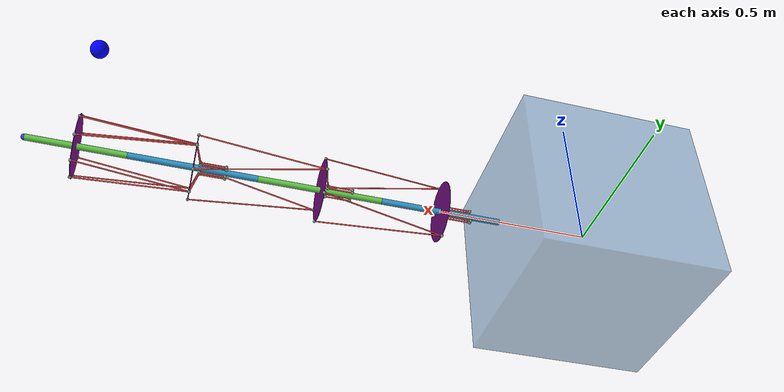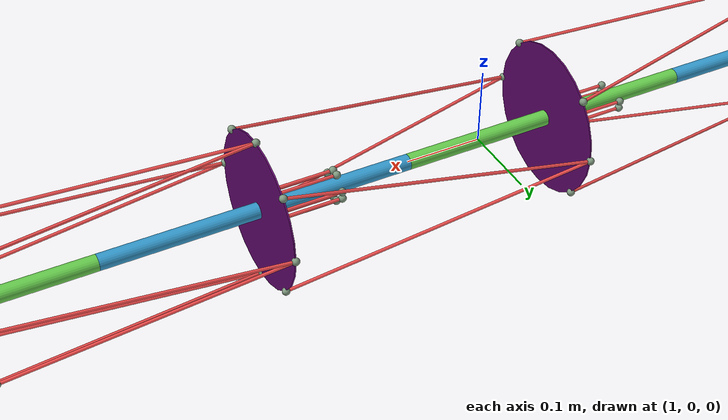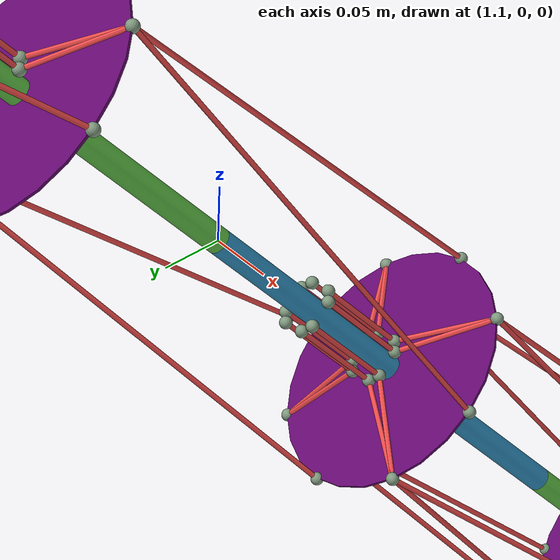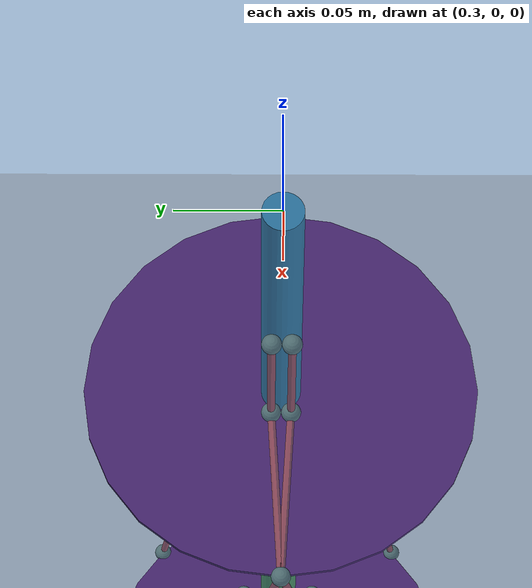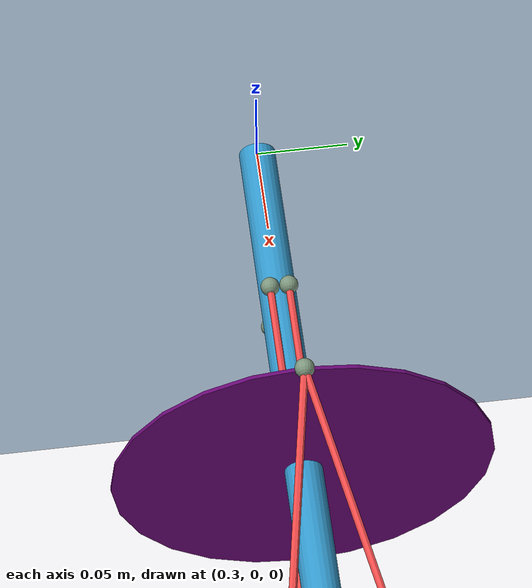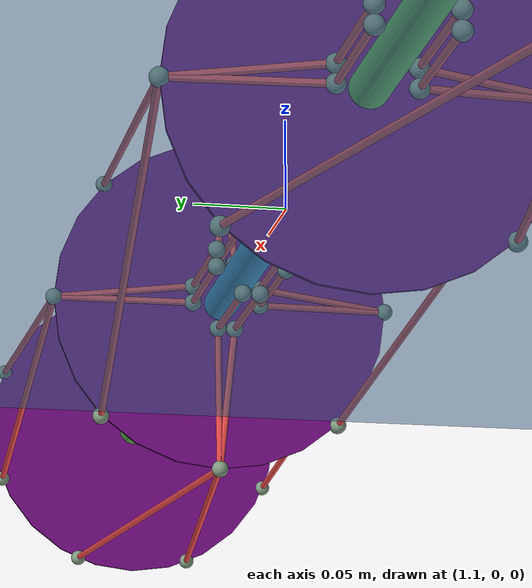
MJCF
<!-- Reference文档中双引号""中的值即为默认值-->
<mujoco model="multibodyrobot">
    <compiler angle="degree" balanceinertia="true"/>
    <!-- 最顶层的defaults class是默认被定义的(即使其中没有内容)，class元素被省略时，顶层的defaults class默认命名为"main"-->
    <default>
        <!-- 定义关节参数预设值：电枢系数，阻尼系数，关节转角限制-->
        <joint armature="1" damping="0"/>
        <default class="joint_h">
            <joint type="hinge" axis="1 0 0" pos="0 0 -0.2" stiffness="2.0001234" damping="1.05"/>
        </default>
        <default class="joint_v">
            <joint type="hinge" axis="0 1 0" pos="0 0 -0.2" stiffness="2.0001234" damping="1.05"/>
        </default>
        <default class="geom_armbar_odd1">
            <geom type="cylinder" size="0.01 0.2" rgba="0.2 0.6 0.8 1"/>
        </default>
        <default class="geom_armbar_even1">
            <geom type="cylinder" size="0.01 0.2" rgba="0.4 0.8 0.3 1"/>
        </default>
        <default class="geom_cable_plate">
            <geom type="cylinder" size="0.1 0.001" rgba="0.4 0.03 0.45 1"/>
        </default>
        <site rgba="0.5 0.6 0.5 1"/>
    </default>

    <option gravity="0 0 0" timestep="0.0025" tolerance="1e-10" integrator="RK4"/>

    <asset>
        <texture name="skybox" type="skybox" builtin="gradient" rgb1=".4 .6 .8" rgb2="0 0 0" width="800" height="800" mark="random" markrgb="1 1 1" />
		<texture name="grid" type="2d" builtin="checker" rgb1=".3 .35 .3" rgb2=".4 .5 .6" width="300" height="300" mark="edge" markrgb=".2 .3 .4" />
		<material name="grid" texture="grid" texrepeat="1 1" texuniform="true" reflectance=".2" />
    </asset>

    <worldbody>
        <light cutoff="100" diffuse="1 1 1" dir="-0 0 -1.3" directional="true" exponent="1" pos="0 0 1.3" specular=".1 .1 .1"/>
        <body name="base_body" pos="0 0 0"><!-- body 内的子标签的位姿均相对于body坐标系-->
            <!-- geom的pos,euler均相对于body的坐标系，姿态除euler外仍有多种表述方式，但都会被mujoco转化为单位四元数-->
            <geom name="base" type="box" size="0.3 0.3 0.3" rgba="0.3 0.5 0.7 0.5" pos="0 0 0" euler="0 0 0"/>
            <joint name="base_joint" type="free" /><!-- 关节类型默认为hinge-->
            <inertial mass="500" pos="0 0 0" diaginertia="40 35 100" />

            <body name="link_left_base" pos="0.5 0 0" euler="0 90 0">
                <geom type="cylinder" size="0.01 0.2" rgba="0.2 0.6 0.8 1"/>
                <geom class="geom_cable_plate"/>
                <inertial mass="1.18" pos="0 0 0" diaginertia="0.016 0.016 0.00037"/>

                <!-- 关节1绳驱模块-->
                <body pos=" 0.02  0.005 -0.1">
                    <geom type="cylinder" size="0.001 0.001"/>
                    <joint name="slide_1_1" type="slide" axis="0 0 1"/>
                    <site name="slide_1_1"/>
                </body>
                <body pos="-0.02  0.005 -0.1">
                    <geom type="cylinder" size="0.001 0.001"/>
                    <joint name="slide_1_2" type="slide" axis="0 0 1"/>
                    <site name="slide_1_2"/>
                </body>
                <body pos="-0.02 -0.005 -0.1">
                    <geom type="cylinder" size="0.001 0.001"/>
                    <joint name="slide_1_3" type="slide" axis="0 0 1"/>
                    <site name="slide_1_3"/>
                </body>
                <body pos=" 0.02 -0.005 -0.1">
                    <geom type="cylinder" size="0.001 0.001"/>
                    <joint name="slide_1_4" type="slide" axis="0 0 1"/>
                    <site name="slide_1_4"/>
                </body>

                <!-- joint<->base -->
                <site name="s_j_b_1" pos=" 0.02  0.005 -0.02"/>
                <site name="s_j_b_2" pos="-0.02  0.005 -0.02"/>
                <site name="s_j_b_3" pos="-0.02 -0.005 -0.02"/>
                <site name="s_j_b_4" pos=" 0.02 -0.005 -0.02"/>
                <!-- base<->1 -->
                <site name="s_b_1_1" pos=" 0.1 0 0"/>
                <site name="s_b_1_2" pos="-0.1 0 0"/>

                <body name="link1_1" pos="0 0 0.4" euler="0 0 0">
                    <geom class="geom_armbar_even1"/>
                    <geom class="geom_cable_plate"/>
                    <joint name="joint_h1_1" class="joint_h"/>
                    <joint name="joint_v1_1" class="joint_v"/>

                    <!-- base<->1 -->
                    <site name="s_1_b_1" pos=" 0.071  0.071 0"/>
                    <site name="s_1_b_2" pos="-0.071  0.071 0"/>
                    <site name="s_1_b_3" pos="-0.071 -0.071 0"/>
                    <site name="s_1_b_4" pos=" 0.071 -0.071 0"/>

                    <!-- 关节2绳驱模块 -->
                    <body pos=" 0.005  0.02 -0.1">
                        <geom type="cylinder" size="0.001 0.001"/>
                        <joint name="slide_2_1" type="slide" axis="0 0 1"/>
                        <site name="slide_2_1"/>
                    </body>
                    <body pos="-0.005  0.02 -0.1">
                        <geom type="cylinder" size="0.001 0.001"/>
                        <joint name="slide_2_2" type="slide" axis="0 0 1"/>
                        <site name="slide_2_2"/>
                    </body>
                    <body pos="-0.005 -0.02 -0.1">
                        <geom type="cylinder" size="0.001 0.001"/>
                        <joint name="slide_2_3" type="slide" axis="0 0 1"/>
                        <site name="slide_2_3"/>
                    </body>
                    <body pos=" 0.005 -0.02 -0.1">
                        <geom type="cylinder" size="0.001 0.001"/>
                        <joint name="slide_2_4" type="slide" axis="0 0 1"/>
                        <site name="slide_2_4"/>
                    </body>

                    <!-- joint<->1-->
                    <site name="s_j_1_1" pos=" 0.005  0.02 -0.02"/>
                    <site name="s_j_1_2" pos="-0.005  0.02 -0.02"/>
                    <site name="s_j_1_3" pos="-0.005 -0.02 -0.02"/>
                    <site name="s_j_1_4" pos=" 0.005 -0.02 -0.02"/>
                    <site name="s_1_2_1" pos="0 0.1 0"/>
                    <site name="s_1_2_2" pos="0 -0.1 0"/>
                    <inertial mass="1.18" pos="0 0 0" diaginertia="0.016 0.016 0.00037" />

                    <body name="link1_2" pos="0 0 0.4" euler="0 0 0">
                        <geom class="geom_armbar_odd1"/>
                        <geom class="geom_cable_plate"/>
                        <joint name="joint_h1_2" class="joint_h"/>
                        <joint name="joint_v1_2" class="joint_v"/>

                        <site name="s_2_1_1" pos=" 0.071  0.071 0"/>
                        <site name="s_2_1_2" pos="-0.071  0.071 0"/>
                        <site name="s_2_1_3" pos="-0.071 -0.071 0"/>
                        <site name="s_2_1_4" pos=" 0.071 -0.071 0"/>

                        <!-- 关节2绳驱模块 -->
                        <body pos="0.02 0.005 -0.1">
                            <geom type="cylinder" size="0.001 0.001"/>
                            <joint name="slide_3_1" type="slide" axis="0 0 1"/>
                            <site name="slide_3_1"/>
                        </body>
                        <body pos="0.005 0.02 -0.1">
                            <geom type="cylinder" size="0.001 0.001"/>
                            <joint name="slide_3_2" type="slide" axis="0 0 1"/>
                            <site name="slide_3_2"/>
                        </body>
                        <body pos="-0.005 0.02 -0.1">
                            <geom type="cylinder" size="0.001 0.001"/>
                            <joint name="slide_3_3" type="slide" axis="0 0 1"/>
                            <site name="slide_3_3"/>
                        </body>
                        <body pos="-0.02 0.005 -0.1">
                            <geom type="cylinder" size="0.001 0.001"/>
                            <joint name="slide_3_4" type="slide" axis="0 0 1"/>
                            <site name="slide_3_4"/>
                        </body>
                        <body pos="-0.02 -0.005 -0.1">
                            <geom type="cylinder" size="0.001 0.001"/>
                            <joint name="slide_3_5" type="slide" axis="0 0 1"/>
                        <site name="slide_3_5"/>
                        </body>
                        <body pos="-0.005 -0.02 -0.1">
                            <geom type="cylinder" size="0.001 0.001"/>
                            <joint name="slide_3_6" type="slide" axis="0 0 1"/>
                            <site name="slide_3_6"/>
                        </body>
                        <body pos="0.005 -0.02 -0.1">
                            <geom type="cylinder" size="0.001 0.001"/>
                            <joint name="slide_3_7" type="slide" axis="0 0 1"/>
                            <site name="slide_3_7"/>
                        </body>
                        <body pos="0.02 -0.005 -0.1">
                            <geom type="cylinder" size="0.001 0.001"/>
                            <joint name="slide_3_8" type="slide" axis="0 0 1"/>
                            <site name="slide_3_8"/>
                        </body>

                        <!-- joint<->2-->
                        <site name="s_j_2_1" pos="0.02 0.005 -0.02"/>
                        <site name="s_j_2_2" pos="0.005 0.02 -0.02"/>
                        <site name="s_j_2_3" pos="-0.005 0.02 -0.02"/>
                        <site name="s_j_2_4" pos="-0.02 0.005 -0.02"/>
                        <site name="s_j_2_5" pos="-0.02 -0.005 -0.02"/>
                        <site name="s_j_2_6" pos="-0.005 -0.02 -0.02"/>
                        <site name="s_j_2_7" pos="0.005 -0.02 -0.02"/>
                        <site name="s_j_2_8" pos="0.02 -0.005 -0.02"/>

                        <site name="s_2_3_1" pos=" 0.1 0 0"/>
                        <site name="s_2_3_2" pos=" 0 0.1 0"/>
                        <site name="s_2_3_3" pos="-0.1 0 0"/>
                        <site name="s_2_3_4" pos="0 -0.1 0"/>
                        <inertial mass="1.18" pos="0 0 0" diaginertia="0.016 0.016 0.00037" />

                        <body name="link1_3" pos="0 0 0.35" euler="0 0 0">
                            <geom class="geom_armbar_even1" size="0.01 0.15"/>
                            <geom class="geom_cable_plate"/>
                            <site name="point_end" size="0.01 0 0" pos="0 0 0.15" rgba="0.2 0.2 1 1"/>
                            <joint name="joint_h1_3" class="joint_h" pos="0 0 -0.15"/>
                            <joint name="joint_v1_3" class="joint_v" pos="0 0 -0.15"/>

                            <site name="s_3_2_1" pos=" 0.092  0.038 0"/>
                            <site name="s_3_2_2" pos=" 0.038  0.092 0"/>
                            <site name="s_3_2_3" pos="-0.038  0.092 0"/>
                            <site name="s_3_2_4" pos="-0.092  0.038 0"/>
                            <site name="s_3_2_5" pos="-0.092 -0.038 0"/>
                            <site name="s_3_2_6" pos="-0.038 -0.092 0"/>
                            <site name="s_3_2_7" pos=" 0.038 -0.092 0"/>
                            <site name="s_3_2_8" pos=" 0.092 -0.038 0"/>
                            <inertial mass="1.18" pos="0 0 0" diaginertia="0.016 0.016 0.00037" />

                        </body>
                    </body>
                </body>
            </body>
        </body>

        <!-- 设置目标点及障碍-->
        <body name="object_point"  pos="1.6 0.4 0" >
            <site name="object_point" size="0.025 0.025 0.025" pos="0 0 0" rgba="0 0 1 1"/>
        </body>

    </worldbody>
    <tendon>
        <spatial range="0 0.55" limited="true" width="0.002" rgba="0.95 0.3 0.3 1" >
            <site site="slide_1_1"/>
            <site site="s_j_b_1"/>
            <site site="s_b_1_1"/>
            <site site="s_1_b_1"/>
        </spatial>
        <spatial range="0 0.55" limited="true" width="0.002" rgba="0.95 0.3 0.3 1" >
            <site site="slide_1_4"/>
            <site site="s_j_b_4"/>
            <site site="s_b_1_1"/>
            <site site="s_1_b_4"/>
        </spatial>
        <spatial range="0 0.55" limited="true" width="0.002" rgba="0.95 0.3 0.3 1" >
            <site site="slide_1_2"/>
            <site site="s_j_b_2"/>
            <site site="s_b_1_2"/>
            <site site="s_1_b_2"/>
        </spatial>
        <spatial range="0 0.55" limited="true" width="0.002" rgba="0.95 0.3 0.3 1" >
            <site site="slide_1_3"/>
            <site site="s_j_b_3"/>
            <site site="s_b_1_2"/>
            <site site="s_1_b_3"/>
        </spatial>
        <spatial range="0 0.55" limited="true" width="0.002" rgba="0.95 0.3 0.3 1" >
            <site site="slide_2_1"/>
            <site site="s_j_1_1"/>
            <site site="s_1_2_1"/>
            <site site="s_2_1_1"/>
        </spatial>
        <spatial range="0 0.55" limited="true" width="0.002" rgba="0.95 0.3 0.3 1" >
            <site site="slide_2_2"/>
            <site site="s_j_1_2"/>
            <site site="s_1_2_1"/>
            <site site="s_2_1_2"/>
        </spatial>
        <spatial range="0 0.55" limited="true" width="0.002" rgba="0.95 0.3 0.3 1" >
            <site site="slide_2_3"/>
            <site site="s_j_1_3"/>
            <site site="s_1_2_2"/>
            <site site="s_2_1_3"/>
        </spatial>
        <spatial range="0 0.55" limited="true" width="0.002" rgba="0.95 0.3 0.3 1" >
            <site site="slide_2_4"/>
            <site site="s_j_1_4"/>
            <site site="s_1_2_2"/>
            <site site="s_2_1_4"/>
        </spatial>
        <spatial range="0 0.5" limited="true" width="0.002" rgba="0.95 0.3 0.3 1" >
            <site site="slide_3_1"/>
            <site site="s_j_2_1"/>
            <site site="s_2_3_1"/>
            <site site="s_3_2_1"/>
        </spatial>
        <spatial range="0 0.5" limited="true" width="0.002" rgba="0.95 0.3 0.3 1" >
            <site site="slide_3_8"/>
            <site site="s_j_2_8"/>
            <site site="s_2_3_1"/>
            <site site="s_3_2_8"/>
        </spatial>
        <spatial range="0 0.5" limited="true" width="0.002" rgba="0.95 0.3 0.3 1" >
            <site site="slide_3_2"/>
            <site site="s_j_2_2"/>
            <site site="s_2_3_2"/>
            <site site="s_3_2_2"/>
        </spatial>
        <spatial range="0 0.5" limited="true" width="0.002" rgba="0.95 0.3 0.3 1" >
            <site site="slide_3_3"/>
            <site site="s_j_2_3"/>
            <site site="s_2_3_2"/>
            <site site="s_3_2_3"/>
        </spatial>
        <spatial range="0 0.5" limited="true" width="0.002" rgba="0.95 0.3 0.3 1" >
            <site site="slide_3_4"/>
            <site site="s_j_2_4"/>
            <site site="s_2_3_3"/>
            <site site="s_3_2_4"/>
        </spatial>
        <spatial range="0 0.5" limited="true" width="0.002" rgba="0.95 0.3 0.3 1" >
            <site site="slide_3_5"/>
            <site site="s_j_2_5"/>
            <site site="s_2_3_3"/>
            <site site="s_3_2_5"/>
        </spatial>
        <spatial range="0 0.5" limited="true" width="0.002" rgba="0.95 0.3 0.3 1" >
            <site site="slide_3_6"/>
            <site site="s_j_2_6"/>
            <site site="s_2_3_4"/>
            <site site="s_3_2_6"/>
        </spatial>
        <spatial range="0 0.5" limited="true" width="0.002" rgba="0.95 0.3 0.3 1" >
            <site site="slide_3_7"/>
            <site site="s_j_2_7"/>
            <site site="s_2_3_4"/>
            <site site="s_3_2_7"/>
        </spatial>
    </tendon>
    <actuator>
        <!-- link1's actuator-->
        <general joint="slide_1_1" name="slide_1_1" biasprm="0 -10 -100" biastype="affine" gaintype="fixed" gainprm="8 0 0" dyntype="none" dynprm="1 0 0" ctrllimited="true" ctrlrange="-0.5 0" />
        <general joint="slide_1_2" name="slide_1_2" biasprm="0 -10 -100" biastype="affine" gaintype="fixed" gainprm="8 0 0" dyntype="none" dynprm="1 0 0" ctrllimited="true" ctrlrange="-0.5 0" />
        <general joint="slide_1_3" name="slide_1_3" biasprm="0 -10 -100" biastype="affine" gaintype="fixed" gainprm="8 0 0" dyntype="none" dynprm="1 0 0" ctrllimited="true" ctrlrange="-0.5 0" />
        <general joint="slide_1_4" name="slide_1_4" biasprm="0 -10 -100" biastype="affine" gaintype="fixed" gainprm="8 0 0" dyntype="none" dynprm="1 0 0" ctrllimited="true" ctrlrange="-0.5 0" />
        <general joint="slide_2_1" name="slide_2_1" biasprm="0 -10 -1100" biastype="affine" gaintype="fixed" gainprm="8 0 0" dyntype="none" dynprm="1 0 0" ctrllimited="true" ctrlrange="-0.5 0" />
        <general joint="slide_2_2" name="slide_2_2" biasprm="0 -10 -1100" biastype="affine" gaintype="fixed" gainprm="8 0 0" dyntype="none" dynprm="1 0 0" ctrllimited="true" ctrlrange="-0.5 0" />
        <general joint="slide_2_3" name="slide_2_3" biasprm="0 -10 -1100" biastype="affine" gaintype="fixed" gainprm="8 0 0" dyntype="none" dynprm="1 0 0" ctrllimited="true" ctrlrange="-0.5 0" />
        <general joint="slide_2_4" name="slide_2_4" biasprm="0 -10 -1100" biastype="affine" gaintype="fixed" gainprm="8 0 0" dyntype="none" dynprm="1 0 0" ctrllimited="true" ctrlrange="-0.5 0" />
        <general joint="slide_3_1" name="slide_3_1" biasprm="0 -10 -1100" biastype="affine" gaintype="fixed" gainprm="8 0 0" dyntype="none" dynprm="1 0 0" ctrllimited="true" ctrlrange="-0.4 0" />
        <general joint="slide_3_2" name="slide_3_2" biasprm="0 -10 -1100" biastype="affine" gaintype="fixed" gainprm="8 0 0" dyntype="none" dynprm="1 0 0" ctrllimited="true" ctrlrange="-0.4 0" />
        <general joint="slide_3_3" name="slide_3_3" biasprm="0 -10 -1100" biastype="affine" gaintype="fixed" gainprm="8 0 0" dyntype="none" dynprm="1 0 0" ctrllimited="true" ctrlrange="-0.4 0" />
        <general joint="slide_3_4" name="slide_3_4" biasprm="0 -10 -1100" biastype="affine" gaintype="fixed" gainprm="8 0 0" dyntype="none" dynprm="1 0 0" ctrllimited="true" ctrlrange="-0.4 0" />
        <general joint="slide_3_5" name="slide_3_5" biasprm="0 -10 -1100" biastype="affine" gaintype="fixed" gainprm="8 0 0" dyntype="none" dynprm="1 0 0" ctrllimited="true" ctrlrange="-0.4 0" />
        <general joint="slide_3_6" name="slide_3_6" biasprm="0 -10 -1100" biastype="affine" gaintype="fixed" gainprm="8 0 0" dyntype="none" dynprm="1 0 0" ctrllimited="true" ctrlrange="-0.4 0" />
        <general joint="slide_3_7" name="slide_3_7" biasprm="0 -10 -1100" biastype="affine" gaintype="fixed" gainprm="8 0 0" dyntype="none" dynprm="1 0 0" ctrllimited="true" ctrlrange="-0.4 0" />
        <general joint="slide_3_8" name="slide_3_8" biasprm="0 -10 -1100" biastype="affine" gaintype="fixed" gainprm="8 0 0" dyntype="none" dynprm="1 0 0" ctrllimited="true" ctrlrange="-0.4 0" />
    </actuator>
</mujoco>
